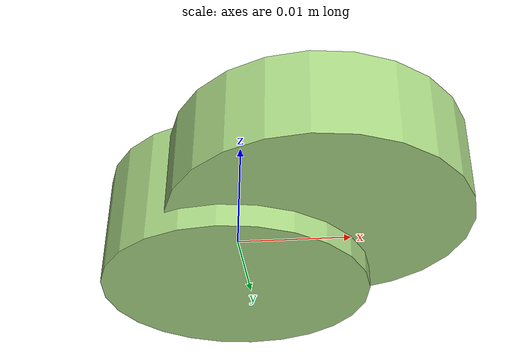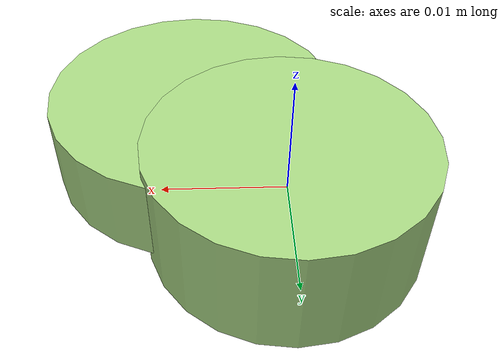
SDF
<?xml version="1.0" ?>
<!-- |    This document was autogenerated by xmacro from data/veggie_template/veggie_base.sdf.xacro  | -->
<!-- |    EDITING THIS FILE BY HAND IS NOT RECOMMENDED                                               | -->
<sdf version="1.8">
	<!-- Parameters -->
	<!-- Base -->
	<!-- Joint 0 -->
	<!-- Link 1 -->
	<!-- Joint 1 -->
	<!-- Link 2 -->
	<!-- Primitives -->
	<!-- All dimensions are half -->
	<!-- Object -->
	<model name="veggie">
		<!-- link0 -->
		<link name="link0">
			<inertial>
				<mass>0.0039859029754171545</mass>
				<inertia>
					<ixx>1.612364534065716e-07</ixx>
					<ixy>0</ixy>
					<ixz>0</ixz>
					<iyy>1.612364534065716e-07</iyy>
					<iyz>0</iyz>
					<izz>2.593043395814773e-07</izz>
				</inertia>
			</inertial>
			<visual name="link0_visual">
				<pose>0 0 0 0 0 0</pose>
				<geometry>
					<cylinder>
						<radius>0.011406608315867123</radius>
						<length>0.009751305819899931</length>
					</cylinder>
				</geometry>
				<material>
					<ambient>0.659 0.839 0.514 1</ambient>
					<diffuse>0.659 0.839 0.514 1</diffuse>
					<specular>0 0 0 0</specular>
					<emissive>0 0 0 1</emissive>
				</material>
			</visual>
			<collision name="link0_collision">
				<pose>0 0 0 0 0 0 </pose>
				<geometry>
					<cylinder>
						<radius>0.011406608315867123</radius>
						<length>0.009751305819899931</length>
					</cylinder>
				</geometry>
			</collision>
		</link>
		<!-- link1 -->
		<joint name="joint0" type="fixed">
			<pose relative_to="link0">0.007485036004695868 -0.007642280124357715 0.000498102591010857 0.0 0.0 0.0</pose>
			<parent>link0</parent>
			<child>link1</child>
		</joint>
		<link name="link1">
			<pose relative_to="joint0">0 0 0 0 0 0</pose>
			<inertial>
				<mass>0.003198568577354249</mass>
				<inertia>
					<ixx>1.2850414505173886e-07</ixx>
					<ixy>0</ixy>
					<ixz>0</ixz>
					<iyy>1.2850414505173886e-07</iyy>
					<iyz>0</iyz>
					<izz>2.3037740906721442e-07</izz>
				</inertia>
			</inertial>
			<visual name="link1_visual">
				<pose>0 0 0 0 0 0</pose>
				<geometry>
					<cylinder>
						<radius>0.012002096366632527</radius>
						<length>0.007067902652367574</length>
					</cylinder>
				</geometry>
				<material>
					<ambient>0.659 0.839 0.514 1</ambient>
					<diffuse>0.659 0.839 0.514 1</diffuse>
					<specular>0 0 0 0</specular>
					<emissive>0 0 0 1</emissive>
				</material>
			</visual>
			<collision name="link1_collision">
				<pose>0 0 0 0 0 0 </pose>
				<geometry>
					<cylinder>
						<radius>0.012002096366632527</radius>
						<length>0.007067902652367574</length>
					</cylinder>
				</geometry>
			</collision>
		</link>
		<!-- link2 -->
	</model>
</sdf>
